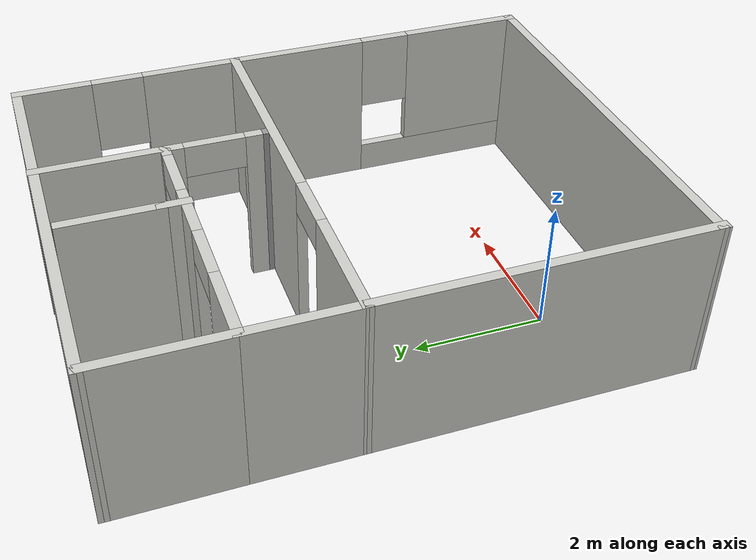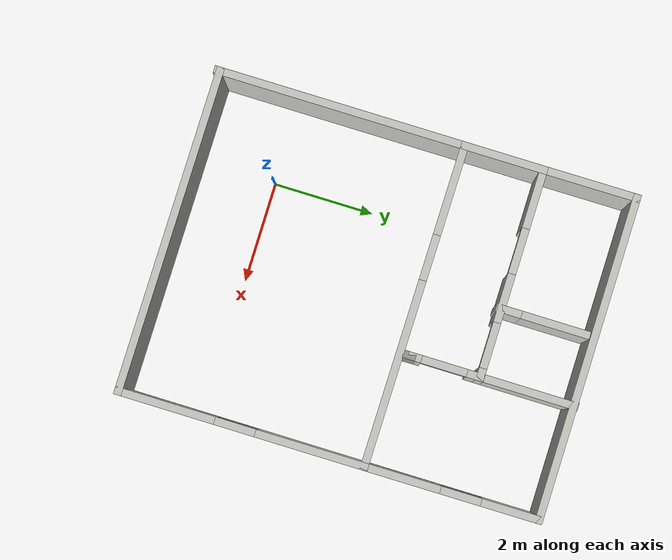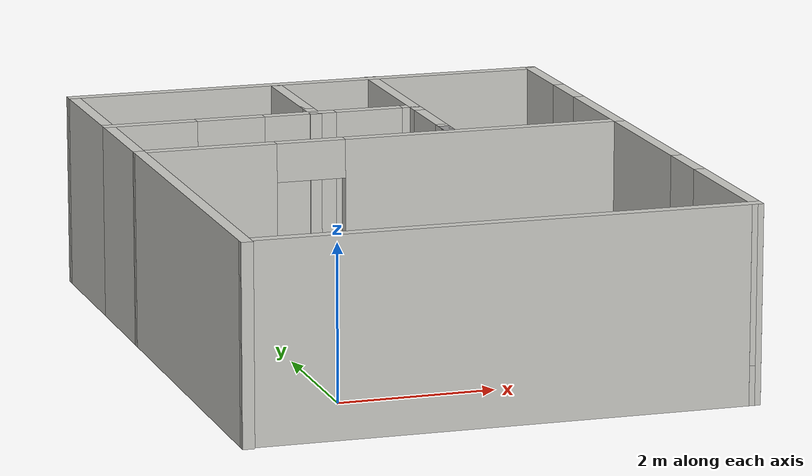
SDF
<?xml version='1.0'?>
<sdf version='1.6'>
  <model name='model'>
    <pose frame=''>1.59538 2.61318 0 0 -0 0</pose>
    <link name='Wall_0'>
      <collision name='Wall_0_Collision'>
        <geometry>
          <box>
            <size>5 0.15 2.5</size>
          </box>
        </geometry>
        <pose frame=''>0 0 1.25 0 -0 0</pose>
      </collision>
      <visual name='Wall_0_Visual'>
        <pose frame=''>0 0 1.25 0 -0 0</pose>
        <geometry>
          <box>
            <size>5 0.15 2.5</size>
          </box>
        </geometry>
        <material>
          <script>
            <uri>file://media/materials/scripts/gazebo.material</uri>
            <name>Gazebo/CeilingTiled</name>
          </script>
          <ambient>1 1 1 1</ambient>
        </material>
        <meta>
          <layer>0</layer>
        </meta>
      </visual>
      <pose frame=''>-3.17264 -1.72476 0 0 -0 1.5708</pose>
    </link>
    <link name='Wall_1'>
      <pose frame=''>0.002358 0.720466 0 0 0 -0.006371</pose>
      <visual name='Wall_1_Visual_0'>
        <pose frame=''>-2.32723 0 1.25 0 -0 0</pose>
        <geometry>
          <box>
            <size>1.84555 0.15 2.5</size>
          </box>
        </geometry>
        <material>
          <script>
            <uri>file://media/materials/scripts/gazebo.material</uri>
            <name>Gazebo/CeilingTiled</name>
          </script>
          <ambient>1 1 1 1</ambient>
        </material>
        <meta>
          <layer>0</layer>
        </meta>
      </visual>
      <collision name='Wall_1_Collision_0'>
        <geometry>
          <box>
            <size>1.84555 0.15 2.5</size>
          </box>
        </geometry>
        <pose frame=''>-2.32723 0 1.25 0 -0 0</pose>
      </collision>
      <visual name='Wall_1_Visual_1'>
        <pose frame=''>1.37277 0 1.25 0 -0 0</pose>
        <geometry>
          <box>
            <size>3.75445 0.15 2.5</size>
          </box>
        </geometry>
        <material>
          <script>
            <uri>file://media/materials/scripts/gazebo.material</uri>
            <name>Gazebo/CeilingTiled</name>
          </script>
          <ambient>1 1 1 1</ambient>
        </material>
        <meta>
          <layer>0</layer>
        </meta>
      </visual>
      <collision name='Wall_1_Collision_1'>
        <geometry>
          <box>
            <size>3.75445 0.15 2.5</size>
          </box>
        </geometry>
        <pose frame=''>1.37277 0 1.25 0 -0 0</pose>
      </collision>
      <visual name='Wall_1_Visual_2'>
        <pose frame=''>-0.954453 0 2.25 0 -0 0</pose>
        <geometry>
          <box>
            <size>0.9 0.15 0.5</size>
          </box>
        </geometry>
        <material>
          <script>
            <uri>file://media/materials/scripts/gazebo.material</uri>
            <name>Gazebo/CeilingTiled</name>
          </script>
          <ambient>1 1 1 1</ambient>
        </material>
        <meta>
          <layer>0</layer>
        </meta>
      </visual>
      <collision name='Wall_1_Collision_2'>
        <geometry>
          <box>
            <size>0.9 0.15 0.5</size>
          </box>
        </geometry>
        <pose frame=''>-0.954453 0 2.25 0 -0 0</pose>
      </collision>
    </link>
    <link name='Wall_10'>
      <collision name='Wall_10_Collision'>
        <geometry>
          <box>
            <size>1.98685 0.15 2.5</size>
          </box>
        </geometry>
        <pose frame=''>0 0 1.25 0 -0 0</pose>
      </collision>
      <visual name='Wall_10_Visual'>
        <pose frame=''>0 0 1.25 0 -0 0</pose>
        <geometry>
          <box>
            <size>1.98685 0.15 2.5</size>
          </box>
        </geometry>
        <material>
          <script>
            <uri>file://media/materials/scripts/gazebo.material</uri>
            <name>Gazebo/CeilingTiled</name>
          </script>
          <ambient>1 1 1 1</ambient>
        </material>
        <meta>
          <layer>0</layer>
        </meta>
      </visual>
      <pose frame=''>-3.17511 3.21866 0 0 0 -1.56811</pose>
    </link>
    <link name='Wall_12'>
      <collision name='Wall_12_Collision'>
        <geometry>
          <box>
            <size>6.5 0.15 2.5</size>
          </box>
        </geometry>
        <pose frame=''>0 0 1.25 0 -0 0</pose>
      </collision>
      <visual name='Wall_12_Visual'>
        <pose frame=''>0 0 1.25 0 -0 0</pose>
        <geometry>
          <box>
            <size>6.5 0.15 2.5</size>
          </box>
        </geometry>
        <material>
          <script>
            <uri>file://media/materials/scripts/gazebo.material</uri>
            <name>Gazebo/CeilingTiled</name>
          </script>
          <ambient>1 1 1 1</ambient>
        </material>
        <meta>
          <layer>0</layer>
        </meta>
      </visual>
      <pose frame=''>-0.00257 4.13708 0 0 -0 0</pose>
    </link>
    <link name='Wall_13'>
      <pose frame=''>3.17489 2.41866 0 0 0 -1.56936</pose>
      <visual name='Wall_13_Visual_0'>
        <pose frame=''>-1.18724 0 1.25 0 -0 0</pose>
        <geometry>
          <box>
            <size>1.21237 0.15 2.5</size>
          </box>
        </geometry>
        <material>
          <script>
            <uri>file://media/materials/scripts/gazebo.material</uri>
            <name>Gazebo/CeilingTiled</name>
          </script>
          <ambient>1 1 1 1</ambient>
        </material>
        <meta>
          <layer>0</layer>
        </meta>
      </visual>
      <collision name='Wall_13_Collision_0'>
        <geometry>
          <box>
            <size>1.21237 0.15 2.5</size>
          </box>
        </geometry>
        <pose frame=''>-1.18724 0 1.25 0 -0 0</pose>
      </collision>
      <visual name='Wall_13_Visual_1'>
        <pose frame=''>0.606185 0 0.25 0 -0 0</pose>
        <geometry>
          <box>
            <size>2.37447 0.15 0.5</size>
          </box>
        </geometry>
        <material>
          <script>
            <uri>file://media/materials/scripts/gazebo.material</uri>
            <name>Gazebo/CeilingTiled</name>
          </script>
          <ambient>1 1 1 1</ambient>
        </material>
        <meta>
          <layer>0</layer>
        </meta>
      </visual>
      <collision name='Wall_13_Collision_1'>
        <geometry>
          <box>
            <size>2.37447 0.15 0.5</size>
          </box>
        </geometry>
        <pose frame=''>0.606185 0 0.25 0 -0 0</pose>
      </collision>
      <visual name='Wall_13_Visual_2'>
        <pose frame=''>1.00619 0 1.5 0 -0 0</pose>
        <geometry>
          <box>
            <size>1.57448 0.15 2</size>
          </box>
        </geometry>
        <material>
          <script>
            <uri>file://media/materials/scripts/gazebo.material</uri>
            <name>Gazebo/CeilingTiled</name>
          </script>
          <ambient>1 1 1 1</ambient>
        </material>
        <meta>
          <layer>0</layer>
        </meta>
      </visual>
      <collision name='Wall_13_Collision_2'>
        <geometry>
          <box>
            <size>1.57448 0.15 2</size>
          </box>
        </geometry>
        <pose frame=''>1.00619 0 1.5 0 -0 0</pose>
      </collision>
      <visual name='Wall_13_Visual_3'>
        <pose frame=''>-0.181052 0 1.9 0 -0 0</pose>
        <geometry>
          <box>
            <size>0.8 0.15 1.2</size>
          </box>
        </geometry>
        <material>
          <script>
            <uri>file://media/materials/scripts/gazebo.material</uri>
            <name>Gazebo/CeilingTiled</name>
          </script>
          <ambient>1 1 1 1</ambient>
        </material>
        <meta>
          <layer>0</layer>
        </meta>
      </visual>
      <collision name='Wall_13_Collision_3'>
        <geometry>
          <box>
            <size>0.8 0.15 1.2</size>
          </box>
        </geometry>
        <pose frame=''>-0.181052 0 1.9 0 -0 0</pose>
      </collision>
    </link>
    <link name='Wall_15'>
      <collision name='Wall_15_Collision'>
        <geometry>
          <box>
            <size>1.5 0.15 2.5</size>
          </box>
        </geometry>
        <pose frame=''>0 0 1.25 0 -0 0</pose>
      </collision>
      <visual name='Wall_15_Visual'>
        <pose frame=''>0 0 1.25 0 -0 0</pose>
        <geometry>
          <box>
            <size>1.5 0.15 2.5</size>
          </box>
        </geometry>
        <material>
          <script>
            <uri>file://media/materials/scripts/gazebo.material</uri>
            <name>Gazebo/CeilingTiled</name>
          </script>
          <ambient>1 1 1 1</ambient>
        </material>
        <meta>
          <layer>0</layer>
        </meta>
      </visual>
      <pose frame=''>-0.42659 3.30026 0 0 0 -1.5708</pose>
    </link>
    <link name='Wall_16'>
      <collision name='Wall_16_Collision'>
        <geometry>
          <box>
            <size>0.5 0.15 2.5</size>
          </box>
        </geometry>
        <pose frame=''>0 0 1.25 0 -0 0</pose>
      </collision>
      <visual name='Wall_16_Visual'>
        <pose frame=''>0 0 1.25 0 -0 0</pose>
        <geometry>
          <box>
            <size>0.5 0.15 2.5</size>
          </box>
        </geometry>
        <material>
          <script>
            <uri>file://media/materials/scripts/gazebo.material</uri>
            <name>Gazebo/CeilingTiled</name>
          </script>
          <ambient>1 1 1 1</ambient>
        </material>
        <meta>
          <layer>0</layer>
        </meta>
      </visual>
      <pose frame=''>-0.42659 2.45026 0 0 0 -1.5708</pose>
    </link>
    <link name='Wall_2'>
      <pose frame=''>3.17736 -1.72476 0 0 0 -1.5708</pose>
      <visual name='Wall_2_Visual_0'>
        <pose frame=''>-1.38721 0 1.25 0 -0 0</pose>
        <geometry>
          <box>
            <size>2.22558 0.15 2.5</size>
          </box>
        </geometry>
        <material>
          <script>
            <uri>file://media/materials/scripts/gazebo.material</uri>
            <name>Gazebo/CeilingTiled</name>
          </script>
          <ambient>1 1 1 1</ambient>
        </material>
        <meta>
          <layer>0</layer>
        </meta>
      </visual>
      <collision name='Wall_2_Collision_0'>
        <geometry>
          <box>
            <size>2.22558 0.15 2.5</size>
          </box>
        </geometry>
        <pose frame=''>-1.38721 0 1.25 0 -0 0</pose>
      </collision>
      <visual name='Wall_2_Visual_1'>
        <pose frame=''>1.11279 0 0.25 0 -0 0</pose>
        <geometry>
          <box>
            <size>2.77442 0.15 0.5</size>
          </box>
        </geometry>
        <material>
          <script>
            <uri>file://media/materials/scripts/gazebo.material</uri>
            <name>Gazebo/CeilingTiled</name>
          </script>
          <ambient>1 1 1 1</ambient>
        </material>
        <meta>
          <layer>0</layer>
        </meta>
      </visual>
      <collision name='Wall_2_Collision_1'>
        <geometry>
          <box>
            <size>2.77442 0.15 0.5</size>
          </box>
        </geometry>
        <pose frame=''>1.11279 0 0.25 0 -0 0</pose>
      </collision>
      <visual name='Wall_2_Visual_2'>
        <pose frame=''>1.51279 0 1.5 0 -0 0</pose>
        <geometry>
          <box>
            <size>1.97442 0.15 2</size>
          </box>
        </geometry>
        <material>
          <script>
            <uri>file://media/materials/scripts/gazebo.material</uri>
            <name>Gazebo/CeilingTiled</name>
          </script>
          <ambient>1 1 1 1</ambient>
        </material>
        <meta>
          <layer>0</layer>
        </meta>
      </visual>
      <collision name='Wall_2_Collision_2'>
        <geometry>
          <box>
            <size>1.97442 0.15 2</size>
          </box>
        </geometry>
        <pose frame=''>1.51279 0 1.5 0 -0 0</pose>
      </collision>
      <visual name='Wall_2_Visual_3'>
        <pose frame=''>0.125583 0 1.9 0 -0 0</pose>
        <geometry>
          <box>
            <size>0.8 0.15 1.2</size>
          </box>
        </geometry>
        <material>
          <script>
            <uri>file://media/materials/scripts/gazebo.material</uri>
            <name>Gazebo/CeilingTiled</name>
          </script>
          <ambient>1 1 1 1</ambient>
        </material>
        <meta>
          <layer>0</layer>
        </meta>
      </visual>
      <collision name='Wall_2_Collision_3'>
        <geometry>
          <box>
            <size>0.8 0.15 1.2</size>
          </box>
        </geometry>
        <pose frame=''>0.125583 0 1.9 0 -0 0</pose>
      </collision>
    </link>
    <link name='Wall_20'>
      <collision name='Wall_20_Collision'>
        <geometry>
          <box>
            <size>2 0.15 2.5</size>
          </box>
        </geometry>
        <pose frame=''>0 0 1.25 0 -0 0</pose>
      </collision>
      <visual name='Wall_20_Visual'>
        <pose frame=''>0 0 1.25 0 -0 0</pose>
        <geometry>
          <box>
            <size>2 0.15 2.5</size>
          </box>
        </geometry>
        <material>
          <script>
            <uri>file://media/materials/scripts/gazebo.material</uri>
            <name>Gazebo/CeilingTiled</name>
          </script>
          <ambient>1 1 1 1</ambient>
        </material>
        <meta>
          <layer>0</layer>
        </meta>
      </visual>
      <pose frame=''>0.927358 3.22524 0 0 -0 1.5708</pose>
    </link>
    <link name='Wall_3'>
      <collision name='Wall_3_Collision'>
        <geometry>
          <box>
            <size>6.5 0.15 2.5</size>
          </box>
        </geometry>
        <pose frame=''>0 0 1.25 0 -0 0</pose>
      </collision>
      <visual name='Wall_3_Visual'>
        <pose frame=''>0 0 1.25 0 -0 0</pose>
        <geometry>
          <box>
            <size>6.5 0.15 2.5</size>
          </box>
        </geometry>
        <material>
          <script>
            <uri>file://media/materials/scripts/gazebo.material</uri>
            <name>Gazebo/CeilingTiled</name>
          </script>
          <ambient>0.760784 0.662745 0.627451 1</ambient>
        </material>
        <meta>
          <layer>0</layer>
        </meta>
      </visual>
      <pose frame=''>0.002358 -4.12953 0 0 -0 3.13522</pose>
    </link>
    <link name='Wall_5'>
      <collision name='Wall_5_Collision'>
        <geometry>
          <box>
            <size>1.70954 0.15 2.5</size>
          </box>
        </geometry>
        <pose frame=''>0 0 1.25 0 -0 0</pose>
      </collision>
      <visual name='Wall_5_Visual'>
        <pose frame=''>0 0 1.25 0 -0 0</pose>
        <geometry>
          <box>
            <size>1.70954 0.15 2.5</size>
          </box>
        </geometry>
        <material>
          <script>
            <uri>file://media/materials/scripts/gazebo.material</uri>
            <name>Gazebo/CeilingTiled</name>
          </script>
          <ambient>1 1 1 1</ambient>
        </material>
        <meta>
          <layer>0</layer>
        </meta>
      </visual>
      <pose frame=''>-3.17264 1.52047 0 0 -0 1.5708</pose>
    </link>
    <link name='Wall_6'>
      <pose frame=''>-1.12264 2.30024 0 0 -0 0</pose>
      <visual name='Wall_6_Visual_0'>
        <pose frame=''>-1.50585 0 1.25 0 -0 0</pose>
        <geometry>
          <box>
            <size>1.23829 0.15 2.5</size>
          </box>
        </geometry>
        <material>
          <script>
            <uri>file://media/materials/scripts/gazebo.material</uri>
            <name>Gazebo/CeilingTiled</name>
          </script>
          <ambient>1 1 1 1</ambient>
        </material>
        <meta>
          <layer>0</layer>
        </meta>
      </visual>
      <collision name='Wall_6_Collision_0'>
        <geometry>
          <box>
            <size>1.23829 0.15 2.5</size>
          </box>
        </geometry>
        <pose frame=''>-1.50585 0 1.25 0 -0 0</pose>
      </collision>
      <visual name='Wall_6_Visual_1'>
        <pose frame=''>0.493773 0 1.25 0 -0 0</pose>
        <geometry>
          <box>
            <size>0.960957 0.15 2.5</size>
          </box>
        </geometry>
        <material>
          <script>
            <uri>file://media/materials/scripts/gazebo.material</uri>
            <name>Gazebo/CeilingTiled</name>
          </script>
          <ambient>1 1 1 1</ambient>
        </material>
        <meta>
          <layer>0</layer>
        </meta>
      </visual>
      <collision name='Wall_6_Collision_1'>
        <geometry>
          <box>
            <size>0.960957 0.15 2.5</size>
          </box>
        </geometry>
        <pose frame=''>0.493773 0 1.25 0 -0 0</pose>
      </collision>
      <visual name='Wall_6_Visual_2'>
        <pose frame=''>1.99963 0 1.25 0 -0 0</pose>
        <geometry>
          <box>
            <size>0.250748 0.15 2.5</size>
          </box>
        </geometry>
        <material>
          <script>
            <uri>file://media/materials/scripts/gazebo.material</uri>
            <name>Gazebo/CeilingTiled</name>
          </script>
          <ambient>1 1 1 1</ambient>
        </material>
        <meta>
          <layer>0</layer>
        </meta>
      </visual>
      <collision name='Wall_6_Collision_2'>
        <geometry>
          <box>
            <size>0.250748 0.15 2.5</size>
          </box>
        </geometry>
        <pose frame=''>1.99963 0 1.25 0 -0 0</pose>
      </collision>
      <visual name='Wall_6_Visual_3'>
        <pose frame=''>-0.436705 0 2.25 0 -0 0</pose>
        <geometry>
          <box>
            <size>0.9 0.15 0.5</size>
          </box>
        </geometry>
        <material>
          <script>
            <uri>file://media/materials/scripts/gazebo.material</uri>
            <name>Gazebo/CeilingTiled</name>
          </script>
          <ambient>1 1 1 1</ambient>
        </material>
        <meta>
          <layer>0</layer>
        </meta>
      </visual>
      <collision name='Wall_6_Collision_3'>
        <geometry>
          <box>
            <size>0.9 0.15 0.5</size>
          </box>
        </geometry>
        <pose frame=''>-0.436705 0 2.25 0 -0 0</pose>
      </collision>
      <visual name='Wall_6_Visual_4'>
        <pose frame=''>1.42425 0 2.25 0 -0 0</pose>
        <geometry>
          <box>
            <size>0.9 0.15 0.5</size>
          </box>
        </geometry>
        <material>
          <script>
            <uri>file://media/materials/scripts/gazebo.material</uri>
            <name>Gazebo/CeilingTiled</name>
          </script>
          <ambient>1 1 1 1</ambient>
        </material>
        <meta>
          <layer>0</layer>
        </meta>
      </visual>
      <collision name='Wall_6_Collision_4'>
        <geometry>
          <box>
            <size>0.9 0.15 0.5</size>
          </box>
        </geometry>
        <pose frame=''>1.42425 0 2.25 0 -0 0</pose>
      </collision>
    </link>
    <link name='Wall_7'>
      <pose frame=''>0.927358 1.62524 0 0 0 -1.5708</pose>
      <visual name='Wall_7_Visual_0'>
        <pose frame=''>-0.58157 0 1.25 0 -0 0</pose>
        <geometry>
          <box>
            <size>0.336859 0.15 2.5</size>
          </box>
        </geometry>
        <material>
          <script>
            <uri>file://media/materials/scripts/gazebo.material</uri>
            <name>Gazebo/CeilingTiled</name>
          </script>
          <ambient>1 1 1 1</ambient>
        </material>
        <meta>
          <layer>0</layer>
        </meta>
      </visual>
      <collision name='Wall_7_Collision_0'>
        <geometry>
          <box>
            <size>0.336859 0.15 2.5</size>
          </box>
        </geometry>
        <pose frame=''>-0.58157 0 1.25 0 -0 0</pose>
      </collision>
      <visual name='Wall_7_Visual_1'>
        <pose frame=''>0.61843 0 1.25 0 -0 0</pose>
        <geometry>
          <box>
            <size>0.263141 0.15 2.5</size>
          </box>
        </geometry>
        <material>
          <script>
            <uri>file://media/materials/scripts/gazebo.material</uri>
            <name>Gazebo/CeilingTiled</name>
          </script>
          <ambient>1 1 1 1</ambient>
        </material>
        <meta>
          <layer>0</layer>
        </meta>
      </visual>
      <collision name='Wall_7_Collision_1'>
        <geometry>
          <box>
            <size>0.263141 0.15 2.5</size>
          </box>
        </geometry>
        <pose frame=''>0.61843 0 1.25 0 -0 0</pose>
      </collision>
      <visual name='Wall_7_Visual_2'>
        <pose frame=''>0.036859 0 2.25 0 -0 0</pose>
        <geometry>
          <box>
            <size>0.9 0.15 0.5</size>
          </box>
        </geometry>
        <material>
          <script>
            <uri>file://media/materials/scripts/gazebo.material</uri>
            <name>Gazebo/CeilingTiled</name>
          </script>
          <ambient>1 1 1 1</ambient>
        </material>
        <meta>
          <layer>0</layer>
        </meta>
      </visual>
      <collision name='Wall_7_Collision_2'>
        <geometry>
          <box>
            <size>0.9 0.15 0.5</size>
          </box>
        </geometry>
        <pose frame=''>0.036859 0 2.25 0 -0 0</pose>
      </collision>
    </link>
    <link name='Wall_8'>
      <collision name='Wall_8_Collision'>
        <geometry>
          <box>
            <size>0.25 0.15 2.5</size>
          </box>
        </geometry>
        <pose frame=''>0 0 1.25 0 -0 0</pose>
      </collision>
      <visual name='Wall_8_Visual'>
        <pose frame=''>0 0 1.25 0 -0 0</pose>
        <geometry>
          <box>
            <size>0.25 0.15 2.5</size>
          </box>
        </geometry>
        <material>
          <script>
            <uri>file://media/materials/scripts/gazebo.material</uri>
            <name>Gazebo/Grey</name>
          </script>
          <ambient>1 1 1 1</ambient>
        </material>
        <meta>
          <layer>0</layer>
        </meta>
      </visual>
      <pose frame=''>0.927358 0.900238 0 0 0 -1.5708</pose>
    </link>
    <static>1</static>
  </model>
</sdf>
